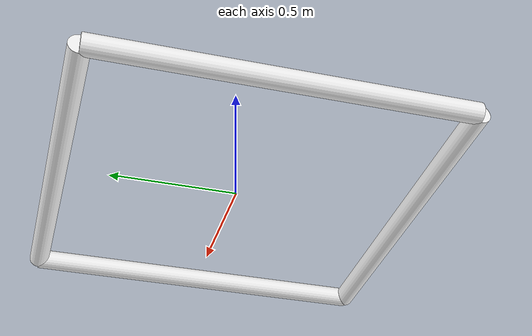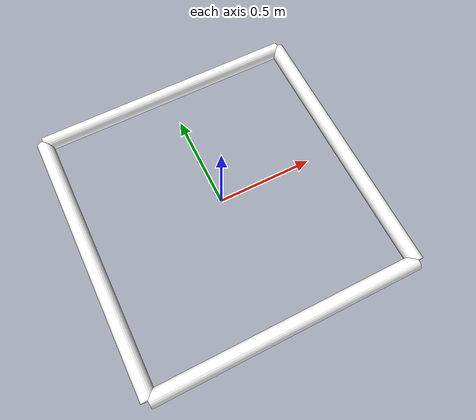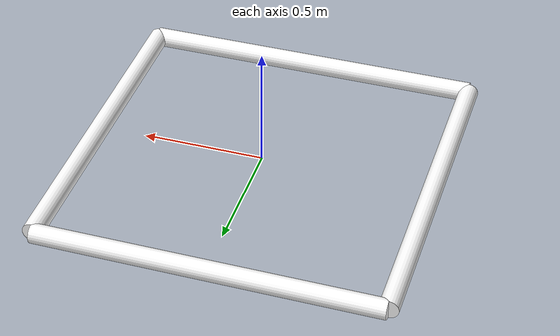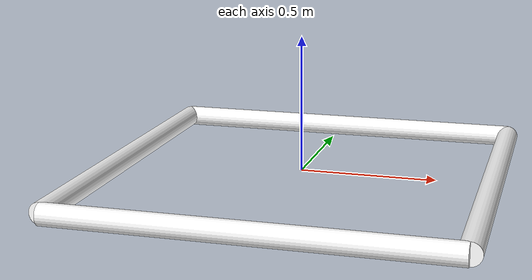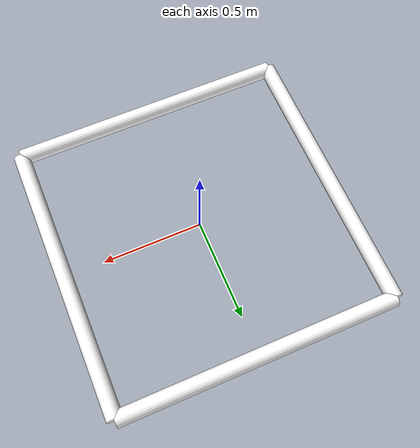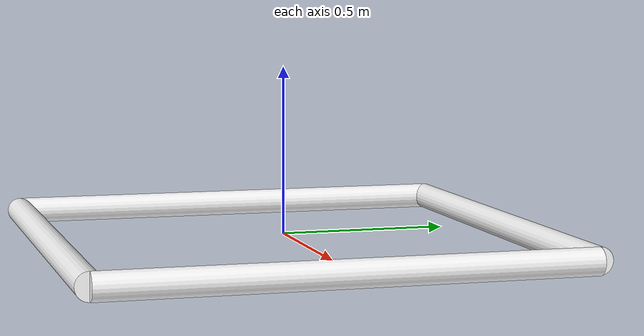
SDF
<?xml version="1.0"?>
<sdf version="1.7">

  <!-- Starting zone (four white posts forming a 1.4 m x 1.4 m square) -->
  <model name="starting_zone">
    <pose>0 0 0 0 0 0</pose>
    <static>1</static>

    <link name="post_front_left">
      <pose>-0.7 0 0 1.5708 0 0</pose>
      <visual name="visual">
        <geometry>
          <cylinder>
            <radius>0.04</radius>
            <length>1.4</length>
          </cylinder>
        </geometry>
        <material>
          <ambient>1 1 1 1</ambient>
          <diffuse>1 1 1 1</diffuse>
        </material>
      </visual>
    </link>

    <link name="post_front_right">
      <pose>0.7 0 0 1.5708 0 0</pose>
      <visual name="visual">
        <geometry>
          <cylinder>
            <radius>0.04</radius>
            <length>1.4</length>
          </cylinder>
        </geometry>
        <material>
          <ambient>1 1 1 1</ambient>
          <diffuse>1 1 1 1</diffuse>
        </material>
      </visual>
    </link>

    <link name="post_back_left">
      <pose>0 -0.7 0 0 1.5708 0</pose>
      <visual name="visual">
        <geometry>
          <cylinder>
            <radius>0.04</radius>
            <length>1.4</length>
          </cylinder>
        </geometry>
        <material>
          <ambient>1 1 1 1</ambient>
          <diffuse>1 1 1 1</diffuse>
        </material>
      </visual>
    </link>

    <link name="post_back_right">
      <pose>0 0.7 0 0 1.5708 0</pose>
      <visual name="visual">
        <geometry>
          <cylinder>
            <radius>0.04</radius>
            <length>1.4</length>
          </cylinder>
        </geometry>
        <material>
          <ambient>1 1 1 1</ambient>
          <diffuse>1 1 1 1</diffuse>
        </material>
      </visual>
    </link>
  </model>

</sdf>
